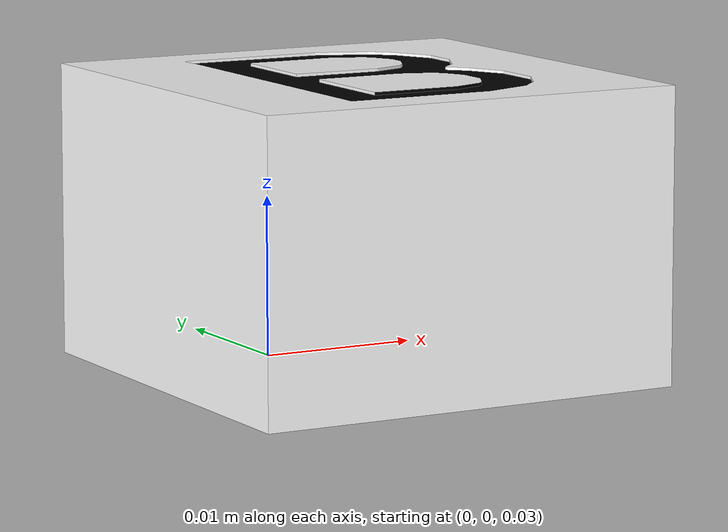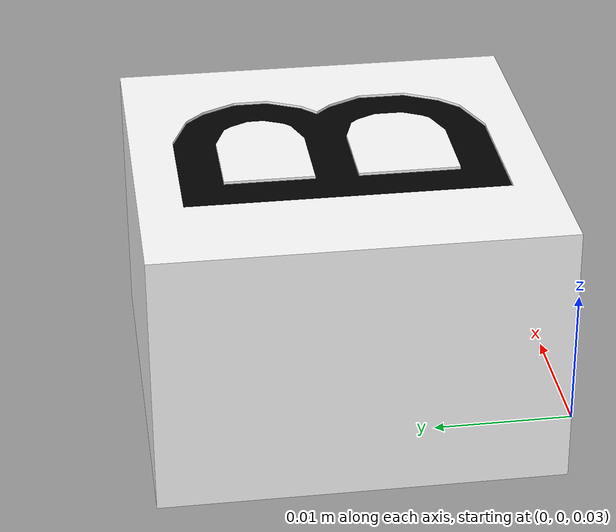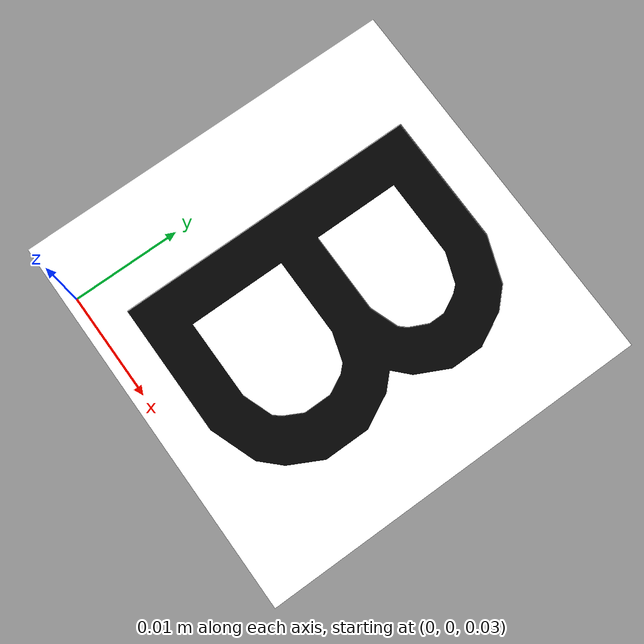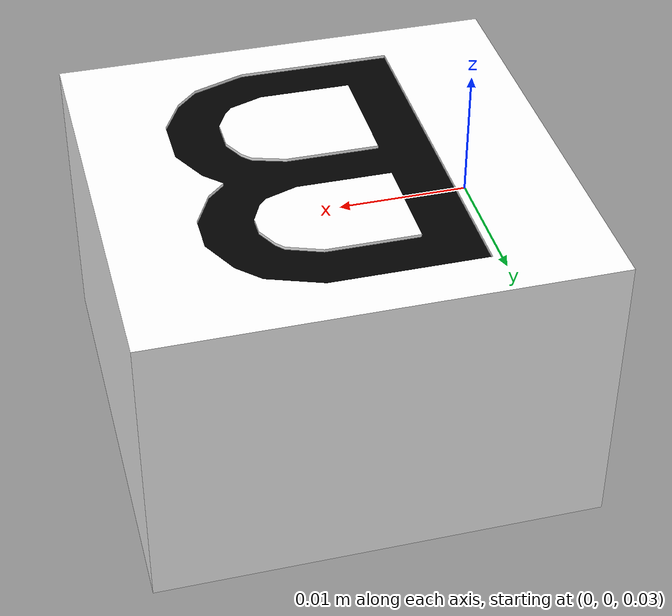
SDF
<?xml version="1.0" ?>
<sdf version="1.6">

<!-- Cubes -->
  <model name="cube_B">
    <static>false</static>
    <link name="link">
      <pose>0 0 0.025 0 0 0</pose>
      <inertial>
          <mass>0.02</mass>
          <inertia>
            <ixx>2.3541666666666672e-05</ixx>
            <ixy>0</ixy>
            <ixz>0</ixz>
            <iyy>2.3541666666666672e-05</iyy>
            <iyz>0</iyz>
            <izz>2.3541666666666672e-05</izz>
          </inertia>
      </inertial>
      <collision name="collision">
          <geometry>
            <box>
                <size>0.03 0.03 0.02</size>
            </box>
          </geometry>
          <surface>
            <contact>
                <poissons_ratio>0.347</poissons_ratio>
                <elastic_modulus>8.8e+09</elastic_modulus>
                <ode>
                  <kp>100000</kp>
                  <kd>1</kd>
                  <max_vel>1.0</max_vel>
                  <min_depth>0.001</min_depth>
                </ode>
            </contact>
            <friction>
              <torsional>
                <coefficient>1.0</coefficient>
                <use_patch_radius>0</use_patch_radius>
                <surface_radius>0.05</surface_radius>
              </torsional>
            </friction>
          </surface>
      </collision>
      <visual name="visual">
          <geometry>
            <mesh>
                <uri>model://char_blocks/Char_B/letter_B.dae</uri>
            </mesh>
        </geometry>
      </visual>
    </link>
  </model>
</sdf>
